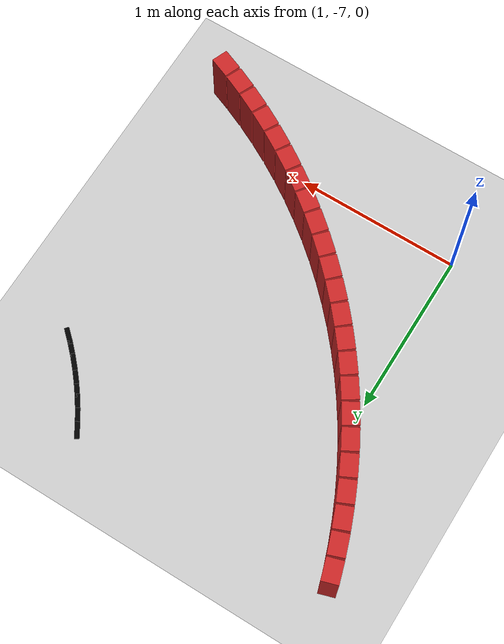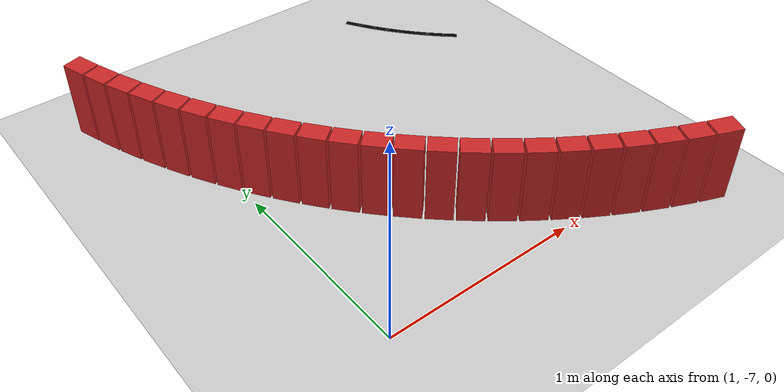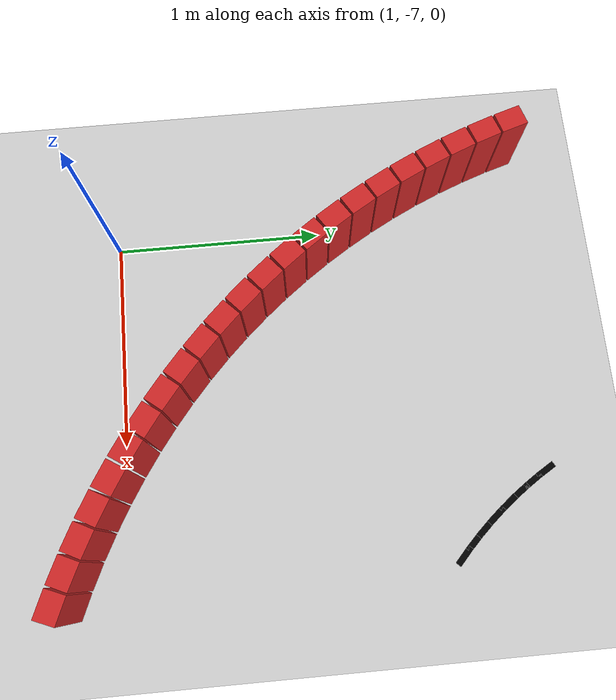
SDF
<sdf version="1.6">
 <world name="new_race_track">
  <include><uri>model://ground_plane</uri></include>
  <include><uri>model://sun</uri></include>
  <model name="race_track">
   <static>true</static>
   <link name="wall_link_579">
    <collision name="c"><geometry><box><size>0.1305 0.1 0.4</size></box></geometry></collision>
    <visual name="v">
     <geometry><box><size>0.1305 0.1 0.4</size></box></geometry>
     <material><ambient>0.8 0.15 0.15 1</ambient><diffuse>0.8 0.15 0.15 1</diffuse></material>
    </visual>
    <pose>0.6589 -5.0411 0.200 0 0 -1.2687</pose>
   </link>
   <link name="wall_link_580">
    <collision name="c"><geometry><box><size>0.1305 0.1 0.4</size></box></geometry></collision>
    <visual name="v">
     <geometry><box><size>0.1305 0.1 0.4</size></box></geometry>
     <material><ambient>0.8 0.15 0.15 1</ambient><diffuse>0.8 0.15 0.15 1</diffuse></material>
    </visual>
    <pose>0.7035 -5.1748 0.200 0 0 -1.2284</pose>
   </link>
   <link name="wall_link_581">
    <collision name="c"><geometry><box><size>0.1305 0.1 0.4</size></box></geometry></collision>
    <visual name="v">
     <geometry><box><size>0.1305 0.1 0.4</size></box></geometry>
     <material><ambient>0.8 0.15 0.15 1</ambient><diffuse>0.8 0.15 0.15 1</diffuse></material>
    </visual>
    <pose>0.7535 -5.3066 0.200 0 0 -1.1882</pose>
   </link>
   <link name="wall_link_582">
    <collision name="c"><geometry><box><size>0.1305 0.1 0.4</size></box></geometry></collision>
    <visual name="v">
     <geometry><box><size>0.1305 0.1 0.4</size></box></geometry>
     <material><ambient>0.8 0.15 0.15 1</ambient><diffuse>0.8 0.15 0.15 1</diffuse></material>
    </visual>
    <pose>0.8087 -5.4363 0.200 0 0 -1.1479</pose>
   </link>
   <link name="wall_link_583">
    <collision name="c"><geometry><box><size>0.1305 0.1 0.4</size></box></geometry></collision>
    <visual name="v">
     <geometry><box><size>0.1305 0.1 0.4</size></box></geometry>
     <material><ambient>0.8 0.15 0.15 1</ambient><diffuse>0.8 0.15 0.15 1</diffuse></material>
    </visual>
    <pose>0.8691 -5.5636 0.200 0 0 -1.1076</pose>
   </link>
   <link name="wall_link_584">
    <collision name="c"><geometry><box><size>0.1305 0.1 0.4</size></box></geometry></collision>
    <visual name="v">
     <geometry><box><size>0.1305 0.1 0.4</size></box></geometry>
     <material><ambient>0.8 0.15 0.15 1</ambient><diffuse>0.8 0.15 0.15 1</diffuse></material>
    </visual>
    <pose>0.9346 -5.6884 0.200 0 0 -1.0673</pose>
   </link>
   <link name="wall_link_585">
    <collision name="c"><geometry><box><size>0.1305 0.1 0.4</size></box></geometry></collision>
    <visual name="v">
     <geometry><box><size>0.1305 0.1 0.4</size></box></geometry>
     <material><ambient>0.8 0.15 0.15 1</ambient><diffuse>0.8 0.15 0.15 1</diffuse></material>
    </visual>
    <pose>1.0051 -5.8105 0.200 0 0 -1.0271</pose>
   </link>
   <link name="wall_link_586">
    <collision name="c"><geometry><box><size>0.1305 0.1 0.4</size></box></geometry></collision>
    <visual name="v">
     <geometry><box><size>0.1305 0.1 0.4</size></box></geometry>
     <material><ambient>0.8 0.15 0.15 1</ambient><diffuse>0.8 0.15 0.15 1</diffuse></material>
    </visual>
    <pose>1.0804 -5.9296 0.200 0 0 -0.9868</pose>
   </link>
   <link name="wall_link_587">
    <collision name="c"><geometry><box><size>0.1305 0.1 0.4</size></box></geometry></collision>
    <visual name="v">
     <geometry><box><size>0.1305 0.1 0.4</size></box></geometry>
     <material><ambient>0.8 0.15 0.15 1</ambient><diffuse>0.8 0.15 0.15 1</diffuse></material>
    </visual>
    <pose>1.1605 -6.0456 0.200 0 0 -0.9465</pose>
   </link>
   <link name="wall_link_588">
    <collision name="c"><geometry><box><size>0.1305 0.1 0.4</size></box></geometry></collision>
    <visual name="v">
     <geometry><box><size>0.1305 0.1 0.4</size></box></geometry>
     <material><ambient>0.8 0.15 0.15 1</ambient><diffuse>0.8 0.15 0.15 1</diffuse></material>
    </visual>
    <pose>1.2452 -6.1583 0.200 0 0 -0.9062</pose>
   </link>
   <link name="wall_link_589">
    <collision name="c"><geometry><box><size>0.1305 0.1 0.4</size></box></geometry></collision>
    <visual name="v">
     <geometry><box><size>0.1305 0.1 0.4</size></box></geometry>
     <material><ambient>0.8 0.15 0.15 1</ambient><diffuse>0.8 0.15 0.15 1</diffuse></material>
    </visual>
    <pose>1.3343 -6.2674 0.200 0 0 -0.8660</pose>
   </link>
   <link name="wall_link_590">
    <collision name="c"><geometry><box><size>0.1305 0.1 0.4</size></box></geometry></collision>
    <visual name="v">
     <geometry><box><size>0.1305 0.1 0.4</size></box></geometry>
     <material><ambient>0.8 0.15 0.15 1</ambient><diffuse>0.8 0.15 0.15 1</diffuse></material>
    </visual>
    <pose>1.4278 -6.3729 0.200 0 0 -0.8257</pose>
   </link>
   <link name="wall_link_591">
    <collision name="c"><geometry><box><size>0.1305 0.1 0.4</size></box></geometry></collision>
    <visual name="v">
     <geometry><box><size>0.1305 0.1 0.4</size></box></geometry>
     <material><ambient>0.8 0.15 0.15 1</ambient><diffuse>0.8 0.15 0.15 1</diffuse></material>
    </visual>
    <pose>1.5254 -6.4746 0.200 0 0 -0.7854</pose>
   </link>
   <link name="wall_link_592">
    <collision name="c"><geometry><box><size>0.1305 0.1 0.4</size></box></geometry></collision>
    <visual name="v">
     <geometry><box><size>0.1305 0.1 0.4</size></box></geometry>
     <material><ambient>0.8 0.15 0.15 1</ambient><diffuse>0.8 0.15 0.15 1</diffuse></material>
    </visual>
    <pose>1.6271 -6.5722 0.200 0 0 -0.7451</pose>
   </link>
   <link name="wall_link_593">
    <collision name="c"><geometry><box><size>0.1305 0.1 0.4</size></box></geometry></collision>
    <visual name="v">
     <geometry><box><size>0.1305 0.1 0.4</size></box></geometry>
     <material><ambient>0.8 0.15 0.15 1</ambient><diffuse>0.8 0.15 0.15 1</diffuse></material>
    </visual>
    <pose>1.7326 -6.6657 0.200 0 0 -0.7048</pose>
   </link>
   <link name="wall_link_594">
    <collision name="c"><geometry><box><size>0.1305 0.1 0.4</size></box></geometry></collision>
    <visual name="v">
     <geometry><box><size>0.1305 0.1 0.4</size></box></geometry>
     <material><ambient>0.8 0.15 0.15 1</ambient><diffuse>0.8 0.15 0.15 1</diffuse></material>
    </visual>
    <pose>1.8417 -6.7548 0.200 0 0 -0.6646</pose>
   </link>
   <link name="wall_link_595">
    <collision name="c"><geometry><box><size>0.1305 0.1 0.4</size></box></geometry></collision>
    <visual name="v">
     <geometry><box><size>0.1305 0.1 0.4</size></box></geometry>
     <material><ambient>0.8 0.15 0.15 1</ambient><diffuse>0.8 0.15 0.15 1</diffuse></material>
    </visual>
    <pose>1.9544 -6.8395 0.200 0 0 -0.6243</pose>
   </link>
   <link name="wall_link_596">
    <collision name="c"><geometry><box><size>0.1305 0.1 0.4</size></box></geometry></collision>
    <visual name="v">
     <geometry><box><size>0.1305 0.1 0.4</size></box></geometry>
     <material><ambient>0.8 0.15 0.15 1</ambient><diffuse>0.8 0.15 0.15 1</diffuse></material>
    </visual>
    <pose>2.0704 -6.9196 0.200 0 0 -0.5840</pose>
   </link>
   <link name="wall_link_597">
    <collision name="c"><geometry><box><size>0.1305 0.1 0.4</size></box></geometry></collision>
    <visual name="v">
     <geometry><box><size>0.1305 0.1 0.4</size></box></geometry>
     <material><ambient>0.8 0.15 0.15 1</ambient><diffuse>0.8 0.15 0.15 1</diffuse></material>
    </visual>
    <pose>2.1895 -6.9949 0.200 0 0 -0.5437</pose>
   </link>
   <link name="wall_link_598">
    <collision name="c"><geometry><box><size>0.1305 0.1 0.4</size></box></geometry></collision>
    <visual name="v">
     <geometry><box><size>0.1305 0.1 0.4</size></box></geometry>
     <material><ambient>0.8 0.15 0.15 1</ambient><diffuse>0.8 0.15 0.15 1</diffuse></material>
    </visual>
    <pose>2.3116 -7.0654 0.200 0 0 -0.5035</pose>
   </link>
   <link name="wall_link_599">
    <collision name="c"><geometry><box><size>0.1305 0.1 0.4</size></box></geometry></collision>
    <visual name="v">
     <geometry><box><size>0.1305 0.1 0.4</size></box></geometry>
     <material><ambient>0.8 0.15 0.15 1</ambient><diffuse>0.8 0.15 0.15 1</diffuse></material>
    </visual>
    <pose>2.4364 -7.1309 0.200 0 0 -0.4632</pose>
   </link>
   <link name="wall_link_600">
    <collision name="c"><geometry><box><size>0.1305 0.1 0.4</size></box></geometry></collision>
    <visual name="v">
     <geometry><box><size>0.1305 0.1 0.4</size></box></geometry>
     <material><ambient>0.8 0.15 0.15 1</ambient><diffuse>0.8 0.15 0.15 1</diffuse></material>
    </visual>
    <pose>2.5637 -7.1913 0.200 0 0 -0.4229</pose>
   </link>
   <link name="wall_link_601">
    <collision name="c"><geometry><box><size>0.1305 0.1 0.4</size></box></geometry></collision>
    <visual name="v">
     <geometry><box><size>0.1305 0.1 0.4</size></box></geometry>
     <material><ambient>0.8 0.15 0.15 1</ambient><diffuse>0.8 0.15 0.15 1</diffuse></material>
    </visual>
    <pose>2.6934 -7.2465 0.200 0 0 -0.3826</pose>
   </link>
   <link name="line_link_1130">
    <visual name="v">
     <geometry><box><size>0.1005 0.03 0.002</size></box></geometry>
     <material><ambient>0 0 0 1</ambient><diffuse>0 0 0 1</diffuse></material>
    </visual>
    <pose>2.2888 -5.0345 0.002 0 0 -1.0271</pose>
   </link>
   <link name="line_link_1131">
    <visual name="v">
     <geometry><box><size>0.1005 0.03 0.002</size></box></geometry>
     <material><ambient>0 0 0 1</ambient><diffuse>0 0 0 1</diffuse></material>
    </visual>
    <pose>2.3318 -5.1025 0.002 0 0 -0.9868</pose>
   </link>
   <link name="line_link_1132">
    <visual name="v">
     <geometry><box><size>0.1005 0.03 0.002</size></box></geometry>
     <material><ambient>0 0 0 1</ambient><diffuse>0 0 0 1</diffuse></material>
    </visual>
    <pose>2.3776 -5.1688 0.002 0 0 -0.9465</pose>
   </link>
   <link name="line_link_1133">
    <visual name="v">
     <geometry><box><size>0.1005 0.03 0.002</size></box></geometry>
     <material><ambient>0 0 0 1</ambient><diffuse>0 0 0 1</diffuse></material>
    </visual>
    <pose>2.4260 -5.2332 0.002 0 0 -0.9062</pose>
   </link>
   <link name="line_link_1134">
    <visual name="v">
     <geometry><box><size>0.1005 0.03 0.002</size></box></geometry>
     <material><ambient>0 0 0 1</ambient><diffuse>0 0 0 1</diffuse></material>
    </visual>
    <pose>2.4769 -5.2956 0.002 0 0 -0.8660</pose>
   </link>
   <link name="line_link_1135">
    <visual name="v">
     <geometry><box><size>0.1005 0.03 0.002</size></box></geometry>
     <material><ambient>0 0 0 1</ambient><diffuse>0 0 0 1</diffuse></material>
    </visual>
    <pose>2.5303 -5.3558 0.002 0 0 -0.8257</pose>
   </link>
   <link name="line_link_1136">
    <visual name="v">
     <geometry><box><size>0.1005 0.03 0.002</size></box></geometry>
     <material><ambient>0 0 0 1</ambient><diffuse>0 0 0 1</diffuse></material>
    </visual>
    <pose>2.5861 -5.4139 0.002 0 0 -0.7854</pose>
   </link>
   <link name="line_link_1137">
    <visual name="v">
     <geometry><box><size>0.1005 0.03 0.002</size></box></geometry>
     <material><ambient>0 0 0 1</ambient><diffuse>0 0 0 1</diffuse></material>
    </visual>
    <pose>2.6442 -5.4697 0.002 0 0 -0.7451</pose>
   </link>
  </model>
 </world>
</sdf>
